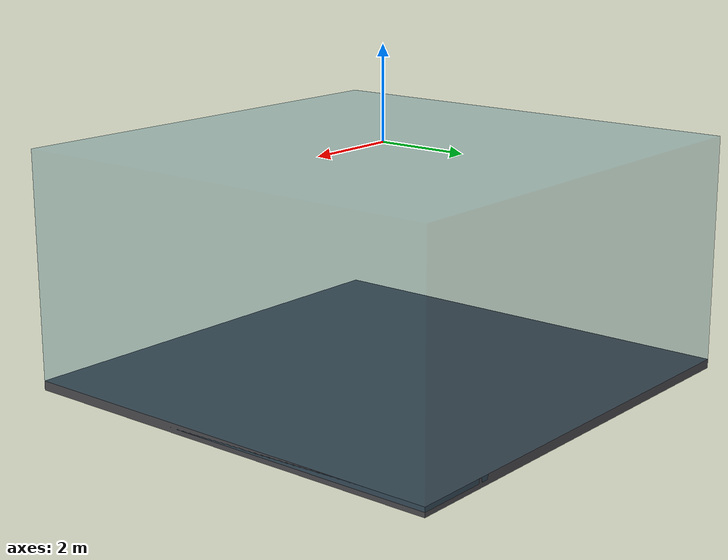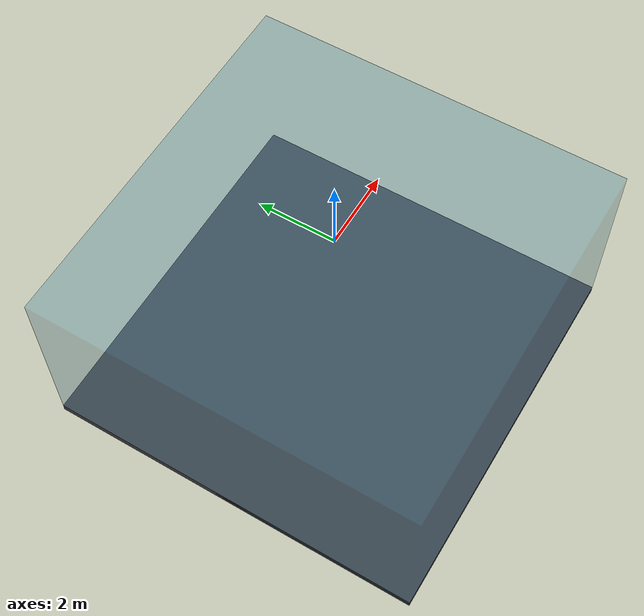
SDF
<?xml version="1.0" ?>
<sdf version="1.9">
  <world name="pool">

    <physics name="1ms" type="ignored">
      <max_step_size>0.001</max_step_size>
      <real_time_factor>1.0</real_time_factor>
    </physics>

    <plugin filename="gz-sim-physics-system"
            name="gz::sim::systems::Physics"/>
    <plugin filename="gz-sim-user-commands-system"
            name="gz::sim::systems::UserCommands"/>
    <plugin filename="gz-sim-scene-broadcaster-system"
            name="gz::sim::systems::SceneBroadcaster"/>
    <plugin filename="gz-sim-contact-system"
            name="gz::sim::systems::Contact"/>

    <!-- Sensor Milestone 3: IMU + kamera (render). -->
    <plugin filename="gz-sim-imu-system"
            name="gz::sim::systems::Imu"/>
    <plugin filename="gz-sim-sensors-system"
            name="gz::sim::systems::Sensors">
      <render_engine>ogre2</render_engine>
    </plugin>

    <!-- Buoyancy BERGRADASI dengan PERMUKAAN BEBAS di z = 0 (air <0, udara >0).
         Mengganti mode uniform yang tak punya permukaan (ROV melayang naik terus). -->
    <plugin filename="gz-sim-buoyancy-system"
            name="gz::sim::systems::Buoyancy">
      <graded_buoyancy>
        <default_density>1000.0</default_density>
        <density_change>
          <above_depth>0.0</above_depth>
          <density>1.0</density>
        </density_change>
      </graded_buoyancy>
    </plugin>

    <scene>
      <ambient>0.4 0.4 0.4 1</ambient>
      <background>0.1 0.2 0.35 1</background>
      <grid>false</grid>
    </scene>

    <light type="directional" name="sun">
      <cast_shadows>true</cast_shadows>
      <pose>0 0 10 0 0 0</pose>
      <diffuse>0.9 0.9 0.9 1</diffuse>
      <specular>0.2 0.2 0.2 1</specular>
      <direction>-0.3 0.2 -0.9</direction>
    </light>

    <!-- Dasar kolam pada z = -5 m (kedalaman kolam 5 m). -->
    <model name="pool_floor">
      <static>true</static>
      <pose>0 0 -5 0 0 0</pose>
      <link name="floor_link">
        <collision name="floor_collision">
          <geometry>
            <box><size>10 10 0.2</size></box>
          </geometry>
        </collision>
        <visual name="floor_visual">
          <geometry>
            <box><size>10 10 0.2</size></box>
          </geometry>
          <material>
            <ambient>0.2 0.2 0.22 1</ambient>
            <diffuse>0.3 0.3 0.32 1</diffuse>
          </material>
        </visual>
      </link>
    </model>

  <!-- Volume air visual (semi-transparan), tidak punya collision agar tidak
         mengganggu fisika. Permukaan air di z = 0. -->
    <model name="water_volume">
      <static>true</static>
      <pose>0 0 -2.5 0 0 0</pose>
      <link name="water_link">
        <visual name="water_visual">
          <geometry>
            <box><size>10 10 5</size></box>
          </geometry>
          <material>
            <ambient>0.0 0.25 0.4 0.25</ambient>
            <diffuse>0.0 0.35 0.5 0.25</diffuse>
          </material>
          <transparency>0.75</transparency>
        </visual>
      </link>
    </model>

  </world>
</sdf>
